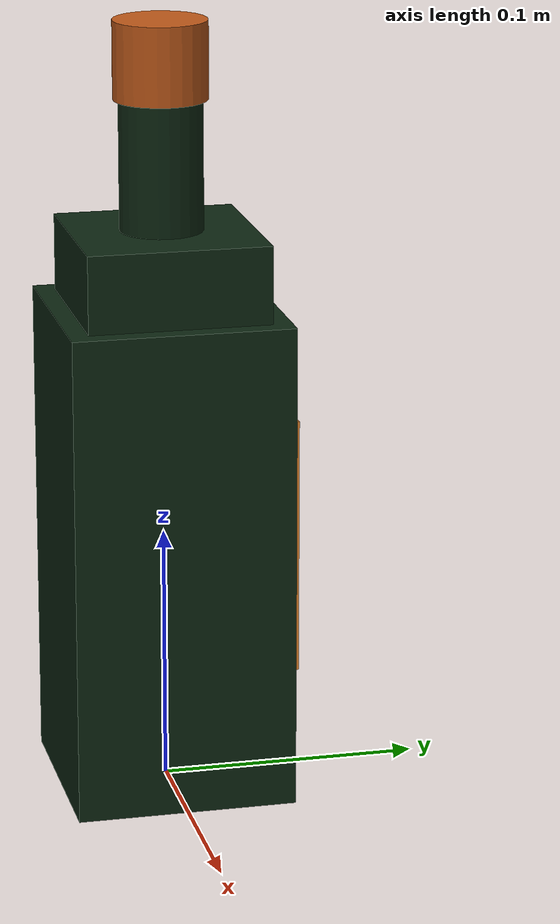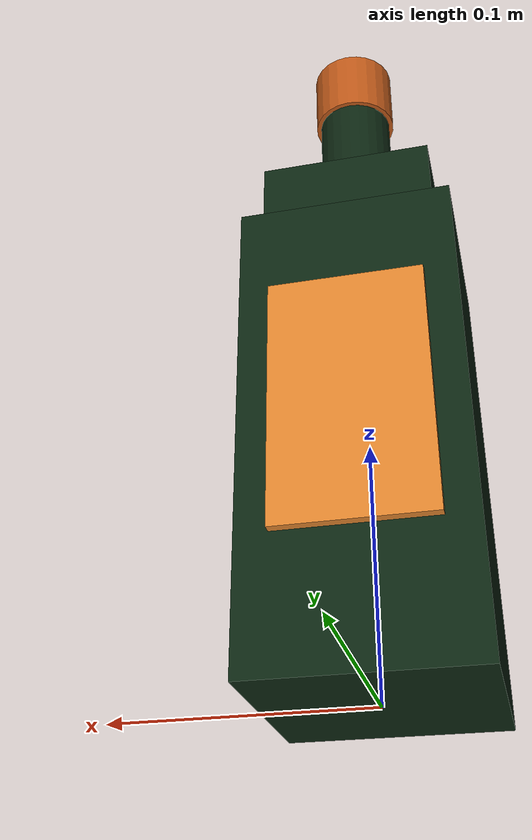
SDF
<?xml version="1.0" ?>
<!-- GENERATED by ros2_ws/src/bartender_gazebo/scripts/make_real_bar_bottles.py.
     Edit that script and re-run it; edits here are overwritten. -->
<sdf version="1.9">
  <model name="jagermeister_bottle">
    <link name="link">
      <inertial><pose>0 0 0.15 0 0 0</pose><mass>1.2</mass><inertia><ixx>0.009542</ixx><iyy>0.009542</iyy><izz>0.001084</izz><ixy>0</ixy><ixz>0</ixz><iyz>0</iyz></inertia></inertial>
      <velocity_decay><linear>0.05</linear><angular>0.30</angular></velocity_decay>
      <visual name="v0"><pose>0 0.0 0.095 0 0 0</pose><geometry><box><size>0.085 0.085 0.19</size></box></geometry><material><ambient>0.015 0.045 0.021 1</ambient><diffuse>0.05 0.15 0.07 1</diffuse><specular>0.6 0.6 0.6 1</specular></material></visual>
      <collision name="c0"><pose>0 0 0.095 0 0 0</pose><geometry><box><size>0.085 0.085 0.19</size></box></geometry><surface><friction><ode><mu>0.9</mu><mu2>0.9</mu2></ode></friction></surface></collision>
      <visual name="v1"><pose>0 0.0445 0.1 0 0 0</pose><geometry><box><size>0.06 0.004 0.1</size></box></geometry><material><ambient>0.264 0.156 0.054 1</ambient><diffuse>0.88 0.52 0.18 1</diffuse><specular>0.6 0.6 0.6 1</specular></material></visual>
      <visual name="v2"><pose>0 0.0 0.205 0 0 0</pose><geometry><box><size>0.07 0.07 0.03</size></box></geometry><material><ambient>0.015 0.045 0.021 1</ambient><diffuse>0.05 0.15 0.07 1</diffuse><specular>0.6 0.6 0.6 1</specular></material></visual>
      <collision name="c2"><pose>0 0 0.205 0 0 0</pose><geometry><box><size>0.07 0.07 0.03</size></box></geometry><surface><friction><ode><mu>0.9</mu><mu2>0.9</mu2></ode></friction></surface></collision>
      <visual name="v3"><pose>0 0.0 0.245 0 0 0</pose><geometry><cylinder><radius>0.016</radius><length>0.05</length></cylinder></geometry><material><ambient>0.015 0.045 0.021 1</ambient><diffuse>0.05 0.15 0.07 1</diffuse><specular>0.6 0.6 0.6 1</specular></material></visual>
      <collision name="c3"><pose>0 0 0.245 0 0 0</pose><geometry><cylinder><radius>0.016</radius><length>0.05</length></cylinder></geometry><surface><friction><ode><mu>0.9</mu><mu2>0.9</mu2></ode></friction></surface></collision>
      <visual name="v4"><pose>0 0.0 0.285 0 0 0</pose><geometry><cylinder><radius>0.018</radius><length>0.03</length></cylinder></geometry><material><ambient>0.225 0.105 0.03 1</ambient><diffuse>0.75 0.35 0.1 1</diffuse><specular>0.6 0.6 0.6 1</specular></material></visual>
    </link>
  </model>
</sdf>
